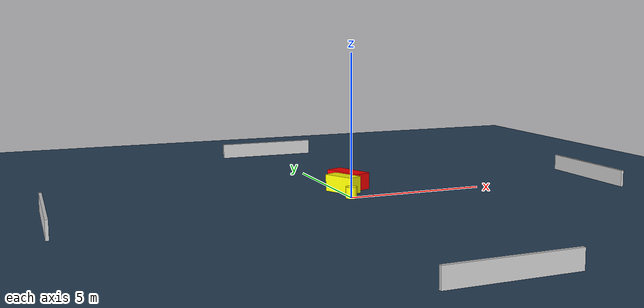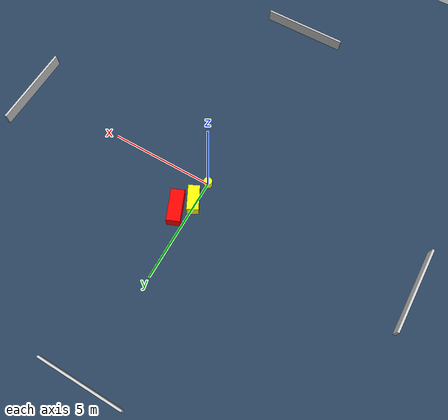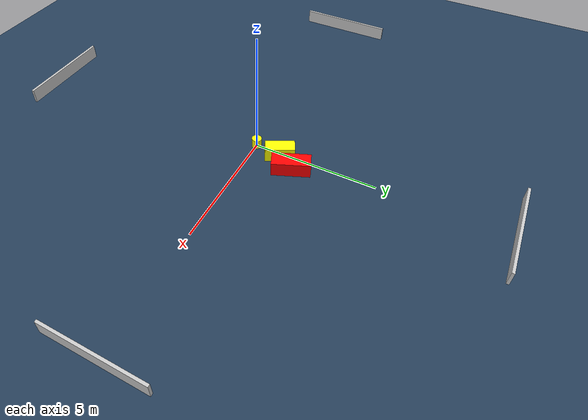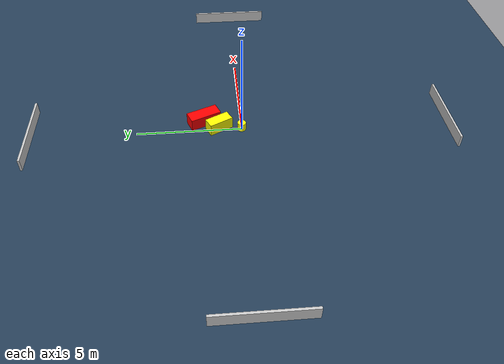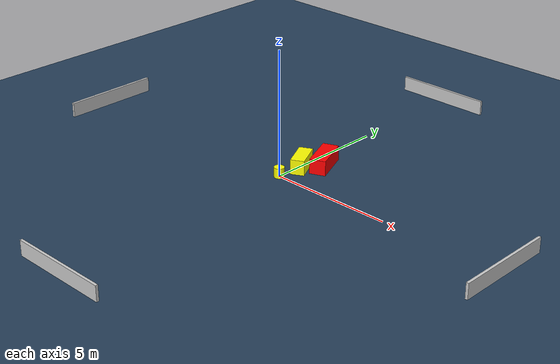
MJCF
<?xml version="1.0" ?>
<mujoco model="generated_environment">
  <option timestep="0.01" integrator="RK4" cone="elliptic"/>
  <default>
    <geom density="1"/>
  </default>
  <asset>
    <texture builtin="gradient" height="3072" name="skybox" rgb1="0.3 0.5 0.7" rgb2="0 0 0" type="skybox" width="512"/>
    <texture builtin="checker" height="300" name="groundplane" rgb1="0.2 0.3 0.4" rgb2="0.1 0.2 0.3" type="2d" width="300"/>
    <material name="groundplane" reflectance="0.2" texrepeat="5 5" texture="groundplane"/>
  </asset>
  <worldbody>
    <light dir="0 0 -1" directional="true" pos="0 0 1.5"/>
    <geom condim="3" friction="0.5 0.005 0.001" material="groundplane" name="floor" pos="0 0 0" size="0 0 0.05" type="plane"/>
    <body name="walls">
      <geom name="wall_1" condim="4" pos="-10.0 0.0 0.3" rgba="0.800000011920929 0.800000011920929 0.800000011920929 1.0" size="0.05 2.0 0.3" type="box"/>
      <geom name="wall_2" condim="4" pos="10.0 0.0 0.3" rgba="0.800000011920929 0.800000011920929 0.800000011920929 1.0" size="0.05 2.0 0.3" type="box"/>
      <geom name="wall_3" condim="4" pos="0.0 -10.0 0.3" rgba="0.800000011920929 0.800000011920929 0.800000011920929 1.0" size="2.0 0.05 0.3" type="box"/>
      <geom name="wall_4" condim="4" pos="0.0 10.0 0.3" rgba="0.800000011920929 0.800000011920929 0.800000011920929 1.0" size="2.0 0.05 0.3" type="box"/>
    </body>
    <body name="robot">
      <joint name="joint_x" type="slide" pos="0 0 0" axis="1 0 0"/>
      <joint name="joint_y" type="slide" pos="0 0 0" axis="0 1 0"/>
      <geom name="robot" type="cylinder" pos="0.0 0.0 0.2" size="0.2 0.2 0.0" mass="5.0" friction="1.0 0.005 0.0001" condim="4" rgba="1.0 1.0 0.0 1.0"/>
    </body>
    <body name="obstacle_1_movable">
      <geom name="obstacle_1_movable" condim="4" pos="0.1304602931981827 1.0826815064101156 0.3" euler="0 0 26.826026052816747" friction="0.0 0.005 0.001" rgba="1.0 1.0 0.0 1.0" size="0.268539716897805 0.586801152972902 0.3" type="box" mass="0.1"/>
      <joint type="free"/>
    </body>
    <body name="obstacle_2_static">
      <geom name="obstacle_2_static" condim="4" pos="0.6293060608948142 1.7949367136929584 0.3" euler="0 0 292.67232905658597" friction="0.0 0.005 0.001" rgba="1.0 0.0 0.0 1.0" size="0.7582177079844523 0.31643598583647886 0.3" type="box"/>
    </body>
  </worldbody>
  <actuator>
    <motor name="actuator_x" joint="joint_x" gear="1" ctrlrange="-1 1"/>
    <motor name="actuator_y" joint="joint_y" gear="1" ctrlrange="-1 1"/>
  </actuator>
</mujoco>
